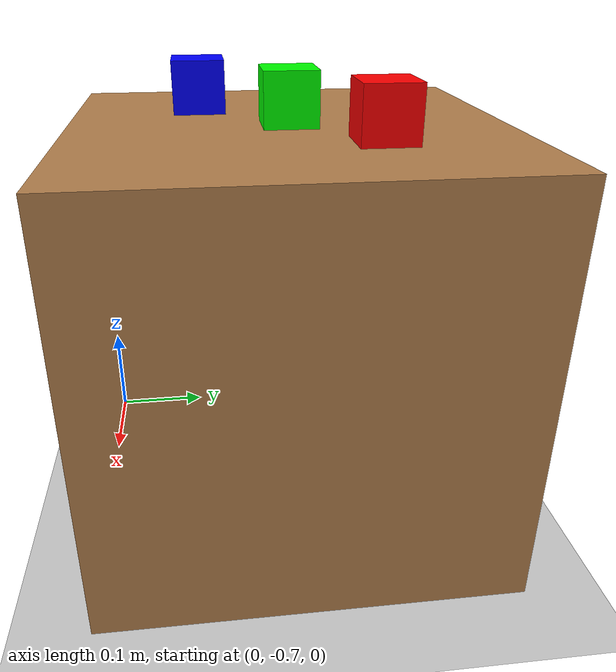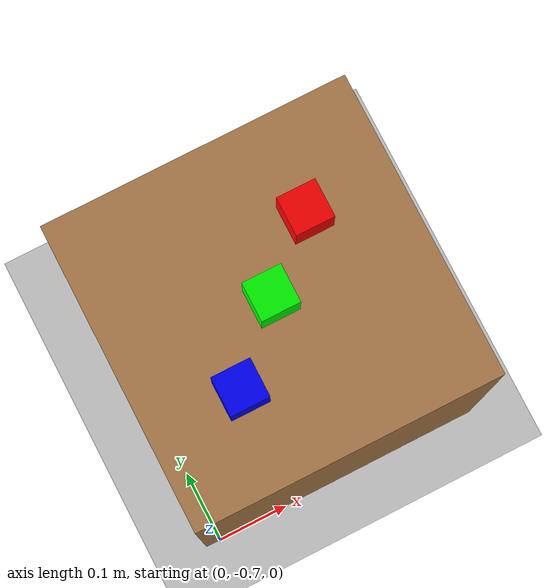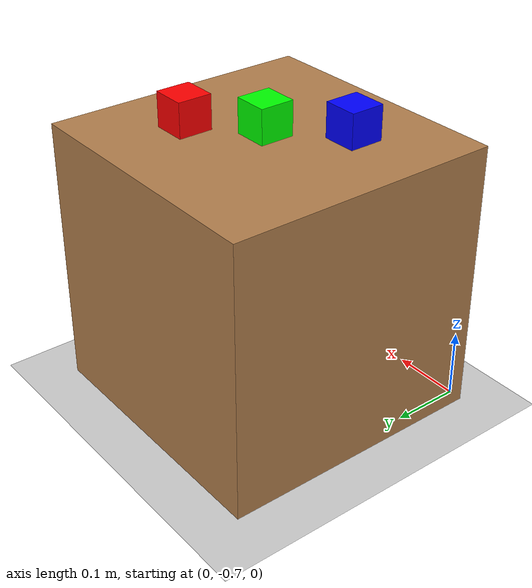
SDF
<?xml version="1.0"?>
<sdf version="1.6">
  <world name="arha_manipulation">
    <physics name="default_physics" default="0" type="ode">
      <max_step_size>0.001</max_step_size>
      <real_time_factor>1.0</real_time_factor>
      <real_time_update_rate>1000</real_time_update_rate>
    </physics>

    <include>
      <uri>model://sun</uri>
    </include>

    <include>
      <uri>model://ground_plane</uri>
    </include>

    <!-- Table -->
    <model name="table">
      <static>true</static>
      <pose>0.18 -0.50 0.2 0 0 1.5708</pose>
      <link name="link">
        <collision name="collision">
          <geometry>
            <box>
              <size>0.4 0.4 0.4</size>
            </box>
          </geometry>
        </collision>
        <visual name="visual">
          <geometry>
            <box>
              <size>0.4 0.4 0.4</size>
            </box>
          </geometry>
          <material>
            <script>
              <uri>file://media/materials/scripts/gazebo.material</uri>
              <name>Gazebo/Wood</name>
            </script>
          </material>
        </visual>
      </link>
    </model>

    <!-- Red Cube -->
    <model name="red_cube">
      <pose>0.26 -0.43 0.425 0 0 0</pose>
      <link name="link">
        <inertial>
          <mass>0.1</mass>
          <inertia>
            <ixx>0.00004167</ixx>
            <ixy>0</ixy>
            <ixz>0</ixz>
            <iyy>0.00004167</iyy>
            <iyz>0</iyz>
            <izz>0.00004167</izz>
          </inertia>
        </inertial>
        <collision name="collision">
          <geometry>
            <box>
              <size>0.05 0.05 0.05</size>
            </box>
          </geometry>
        </collision>
        <visual name="visual">
          <geometry>
            <box>
              <size>0.05 0.05 0.05</size>
            </box>
          </geometry>
          <material>
            <ambient>1 0 0 1</ambient>
            <diffuse>1 0 0 1</diffuse>
          </material>
        </visual>
      </link>
    </model>

    <!-- Blue Cube -->
    <model name="blue_cube">
      <pose>0.10 -0.58 0.425 0 0 0</pose>
      <link name="link">
        <inertial>
          <mass>0.1</mass>
          <inertia>
            <ixx>0.00004167</ixx>
            <ixy>0</ixy>
            <ixz>0</ixz>
            <iyy>0.00004167</iyy>
            <iyz>0</iyz>
            <izz>0.00004167</izz>
          </inertia>
        </inertial>
        <collision name="collision">
          <geometry>
            <box>
              <size>0.05 0.05 0.05</size>
            </box>
          </geometry>
        </collision>
        <visual name="visual">
          <geometry>
            <box>
              <size>0.05 0.05 0.05</size>
            </box>
          </geometry>
          <material>
            <ambient>0 0 1 1</ambient>
            <diffuse>0 0 1 1</diffuse>
          </material>
        </visual>
      </link>
    </model>

    <!-- Green Cube -->
    <model name="green_cube">
      <pose>0.18 -0.50 0.425 0 0 0</pose>
      <link name="link">
        <inertial>
          <mass>0.1</mass>
          <inertia>
            <ixx>0.00004167</ixx>
            <ixy>0</ixy>
            <ixz>0</ixz>
            <iyy>0.00004167</iyy>
            <iyz>0</iyz>
            <izz>0.00004167</izz>
          </inertia>
        </inertial>
        <collision name="collision">
          <geometry>
            <box>
              <size>0.05 0.05 0.05</size>
            </box>
          </geometry>
        </collision>
        <visual name="visual">
          <geometry>
            <box>
              <size>0.05 0.05 0.05</size>
            </box>
          </geometry>
          <material>
            <ambient>0 1 0 1</ambient>
            <diffuse>0 1 0 1</diffuse>
          </material>
        </visual>
      </link>
    </model>

  </world>
</sdf>
